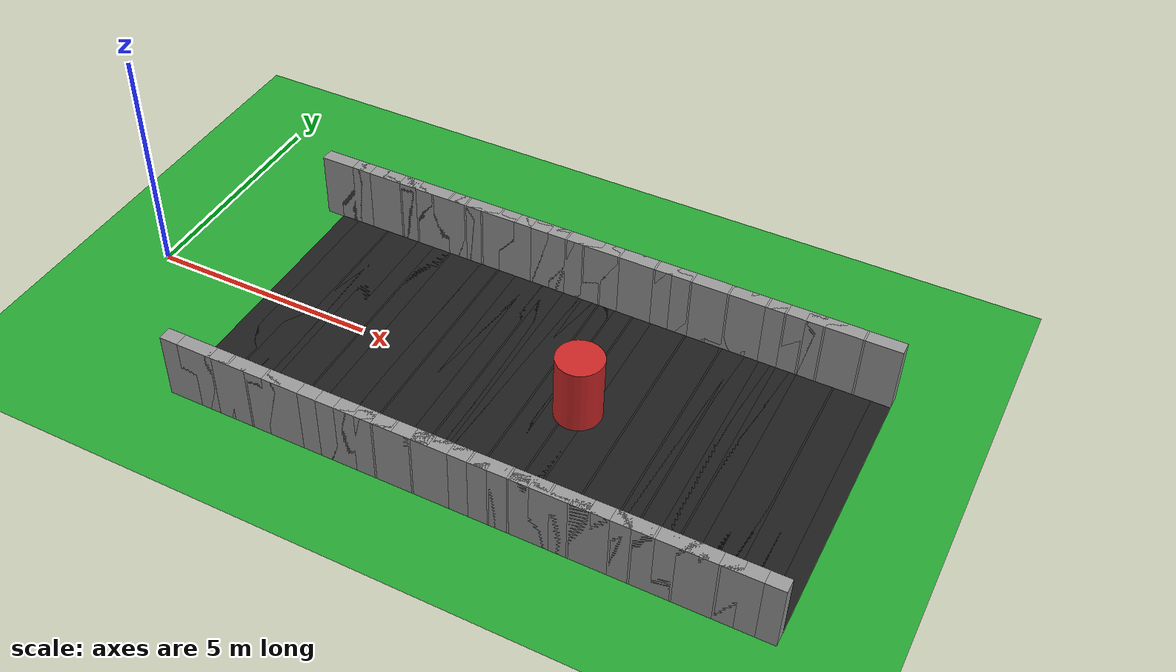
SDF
<sdf version="1.6">
 <world name="obstacle_mid">
  <include><uri>model://sun</uri></include>
  <model name="ground_plane">
   <static>true</static>
   <link name="link">
    <collision name="collision">
     <surface><friction><ode><mu>100</mu><mu2>50</mu2></ode></friction></surface>
     <geometry><plane><normal>0 0 1</normal><size>120 120</size></plane></geometry>
    </collision>
    <visual name="visual">
     <geometry><plane><normal>0 0 1</normal><size>120 120</size></plane></geometry>
     <material>
      <script><uri>file://media/materials/scripts/gazebo.material</uri><name>Gazebo/Green</name></script>
     </material>
    </visual>
   </link>
  </model>
  <model name="curbL_6">
   <static>true</static>
   <pose>2.600 3.150 0.750 0 0 0.00000</pose>
   <link name="link">
    <collision name="collision"><geometry><box><size>0.760 0.300 1.500</size></box></geometry></collision>
    <visual name="visual">
     <geometry><box><size>0.760 0.300 1.500</size></box></geometry>
     <material>
      <script><uri>file://media/materials/scripts/gazebo.material</uri><name>Gazebo/Grey</name></script>
     </material>
    </visual>
   </link>
  </model>
  <model name="asphalt_7">
   <static>true</static>
   <pose>3.000 0.000 0.005 0 0 0.00000</pose>
   <link name="link">
    <visual name="visual">
     <geometry><box><size>0.760 6.000 0.010</size></box></geometry>
     <material>
      <script><uri>file://media/materials/scripts/gazebo.material</uri><name>Gazebo/Black</name></script>
     </material>
    </visual>
   </link>
  </model>
  <model name="curbL_7">
   <static>true</static>
   <pose>3.000 3.150 0.750 0 0 0.00000</pose>
   <link name="link">
    <collision name="collision"><geometry><box><size>0.760 0.300 1.500</size></box></geometry></collision>
    <visual name="visual">
     <geometry><box><size>0.760 0.300 1.500</size></box></geometry>
     <material>
      <script><uri>file://media/materials/scripts/gazebo.material</uri><name>Gazebo/Grey</name></script>
     </material>
    </visual>
   </link>
  </model>
  <model name="curbR_7">
   <static>true</static>
   <pose>3.000 -3.150 0.750 0 0 0.00000</pose>
   <link name="link">
    <collision name="collision"><geometry><box><size>0.760 0.300 1.500</size></box></geometry></collision>
    <visual name="visual">
     <geometry><box><size>0.760 0.300 1.500</size></box></geometry>
     <material>
      <script><uri>file://media/materials/scripts/gazebo.material</uri><name>Gazebo/Grey</name></script>
     </material>
    </visual>
   </link>
  </model>
  <model name="asphalt_8">
   <static>true</static>
   <pose>3.400 0.000 0.005 0 0 0.00000</pose>
   <link name="link">
    <visual name="visual">
     <geometry><box><size>0.760 6.000 0.010</size></box></geometry>
     <material>
      <script><uri>file://media/materials/scripts/gazebo.material</uri><name>Gazebo/Black</name></script>
     </material>
    </visual>
   </link>
  </model>
  <model name="curbL_8">
   <static>true</static>
   <pose>3.400 3.150 0.750 0 0 0.00000</pose>
   <link name="link">
    <collision name="collision"><geometry><box><size>0.760 0.300 1.500</size></box></geometry></collision>
    <visual name="visual">
     <geometry><box><size>0.760 0.300 1.500</size></box></geometry>
     <material>
      <script><uri>file://media/materials/scripts/gazebo.material</uri><name>Gazebo/Grey</name></script>
     </material>
    </visual>
   </link>
  </model>
  <model name="curbR_8">
   <static>true</static>
   <pose>3.400 -3.150 0.750 0 0 0.00000</pose>
   <link name="link">
    <collision name="collision"><geometry><box><size>0.760 0.300 1.500</size></box></geometry></collision>
    <visual name="visual">
     <geometry><box><size>0.760 0.300 1.500</size></box></geometry>
     <material>
      <script><uri>file://media/materials/scripts/gazebo.material</uri><name>Gazebo/Grey</name></script>
     </material>
    </visual>
   </link>
  </model>
  <model name="asphalt_9">
   <static>true</static>
   <pose>3.800 0.000 0.005 0 0 0.00000</pose>
   <link name="link">
    <visual name="visual">
     <geometry><box><size>0.760 6.000 0.010</size></box></geometry>
     <material>
      <script><uri>file://media/materials/scripts/gazebo.material</uri><name>Gazebo/Black</name></script>
     </material>
    </visual>
   </link>
  </model>
  <model name="curbL_9">
   <static>true</static>
   <pose>3.800 3.150 0.750 0 0 0.00000</pose>
   <link name="link">
    <collision name="collision"><geometry><box><size>0.760 0.300 1.500</size></box></geometry></collision>
    <visual name="visual">
     <geometry><box><size>0.760 0.300 1.500</size></box></geometry>
     <material>
      <script><uri>file://media/materials/scripts/gazebo.material</uri><name>Gazebo/Grey</name></script>
     </material>
    </visual>
   </link>
  </model>
  <model name="curbR_9">
   <static>true</static>
   <pose>3.800 -3.150 0.750 0 0 0.00000</pose>
   <link name="link">
    <collision name="collision"><geometry><box><size>0.760 0.300 1.500</size></box></geometry></collision>
    <visual name="visual">
     <geometry><box><size>0.760 0.300 1.500</size></box></geometry>
     <material>
      <script><uri>file://media/materials/scripts/gazebo.material</uri><name>Gazebo/Grey</name></script>
     </material>
    </visual>
   </link>
  </model>
  <model name="asphalt_10">
   <static>true</static>
   <pose>4.200 0.000 0.005 0 0 0.00000</pose>
   <link name="link">
    <visual name="visual">
     <geometry><box><size>0.760 6.000 0.010</size></box></geometry>
     <material>
      <script><uri>file://media/materials/scripts/gazebo.material</uri><name>Gazebo/Black</name></script>
     </material>
    </visual>
   </link>
  </model>
  <model name="curbL_10">
   <static>true</static>
   <pose>4.200 3.150 0.750 0 0 0.00000</pose>
   <link name="link">
    <collision name="collision"><geometry><box><size>0.760 0.300 1.500</size></box></geometry></collision>
    <visual name="visual">
     <geometry><box><size>0.760 0.300 1.500</size></box></geometry>
     <material>
      <script><uri>file://media/materials/scripts/gazebo.material</uri><name>Gazebo/Grey</name></script>
     </material>
    </visual>
   </link>
  </model>
  <model name="curbR_10">
   <static>true</static>
   <pose>4.200 -3.150 0.750 0 0 0.00000</pose>
   <link name="link">
    <collision name="collision"><geometry><box><size>0.760 0.300 1.500</size></box></geometry></collision>
    <visual name="visual">
     <geometry><box><size>0.760 0.300 1.500</size></box></geometry>
     <material>
      <script><uri>file://media/materials/scripts/gazebo.material</uri><name>Gazebo/Grey</name></script>
     </material>
    </visual>
   </link>
  </model>
  <model name="asphalt_11">
   <static>true</static>
   <pose>4.600 0.000 0.005 0 0 0.00000</pose>
   <link name="link">
    <visual name="visual">
     <geometry><box><size>0.760 6.000 0.010</size></box></geometry>
     <material>
      <script><uri>file://media/materials/scripts/gazebo.material</uri><name>Gazebo/Black</name></script>
     </material>
    </visual>
   </link>
  </model>
  <model name="curbL_11">
   <static>true</static>
   <pose>4.600 3.150 0.750 0 0 0.00000</pose>
   <link name="link">
    <collision name="collision"><geometry><box><size>0.760 0.300 1.500</size></box></geometry></collision>
    <visual name="visual">
     <geometry><box><size>0.760 0.300 1.500</size></box></geometry>
     <material>
      <script><uri>file://media/materials/scripts/gazebo.material</uri><name>Gazebo/Grey</name></script>
     </material>
    </visual>
   </link>
  </model>
  <model name="curbR_11">
   <static>true</static>
   <pose>4.600 -3.150 0.750 0 0 0.00000</pose>
   <link name="link">
    <collision name="collision"><geometry><box><size>0.760 0.300 1.500</size></box></geometry></collision>
    <visual name="visual">
     <geometry><box><size>0.760 0.300 1.500</size></box></geometry>
     <material>
      <script><uri>file://media/materials/scripts/gazebo.material</uri><name>Gazebo/Grey</name></script>
     </material>
    </visual>
   </link>
  </model>
  <model name="asphalt_12">
   <static>true</static>
   <pose>5.000 0.000 0.005 0 0 0.00000</pose>
   <link name="link">
    <visual name="visual">
     <geometry><box><size>0.760 6.000 0.010</size></box></geometry>
     <material>
      <script><uri>file://media/materials/scripts/gazebo.material</uri><name>Gazebo/Black</name></script>
     </material>
    </visual>
   </link>
  </model>
  <model name="curbL_12">
   <static>true</static>
   <pose>5.000 3.150 0.750 0 0 0.00000</pose>
   <link name="link">
    <collision name="collision"><geometry><box><size>0.760 0.300 1.500</size></box></geometry></collision>
    <visual name="visual">
     <geometry><box><size>0.760 0.300 1.500</size></box></geometry>
     <material>
      <script><uri>file://media/materials/scripts/gazebo.material</uri><name>Gazebo/Grey</name></script>
     </material>
    </visual>
   </link>
  </model>
  <model name="curbR_12">
   <static>true</static>
   <pose>5.000 -3.150 0.750 0 0 0.00000</pose>
   <link name="link">
    <collision name="collision"><geometry><box><size>0.760 0.300 1.500</size></box></geometry></collision>
    <visual name="visual">
     <geometry><box><size>0.760 0.300 1.500</size></box></geometry>
     <material>
      <script><uri>file://media/materials/scripts/gazebo.material</uri><name>Gazebo/Grey</name></script>
     </material>
    </visual>
   </link>
  </model>
  <model name="asphalt_13">
   <static>true</static>
   <pose>5.400 0.000 0.005 0 0 0.00000</pose>
   <link name="link">
    <visual name="visual">
     <geometry><box><size>0.760 6.000 0.010</size></box></geometry>
     <material>
      <script><uri>file://media/materials/scripts/gazebo.material</uri><name>Gazebo/Black</name></script>
     </material>
    </visual>
   </link>
  </model>
  <model name="curbL_13">
   <static>true</static>
   <pose>5.400 3.150 0.750 0 0 0.00000</pose>
   <link name="link">
    <collision name="collision"><geometry><box><size>0.760 0.300 1.500</size></box></geometry></collision>
    <visual name="visual">
     <geometry><box><size>0.760 0.300 1.500</size></box></geometry>
     <material>
      <script><uri>file://media/materials/scripts/gazebo.material</uri><name>Gazebo/Grey</name></script>
     </material>
    </visual>
   </link>
  </model>
  <model name="curbR_13">
   <static>true</static>
   <pose>5.400 -3.150 0.750 0 0 0.00000</pose>
   <link name="link">
    <collision name="collision"><geometry><box><size>0.760 0.300 1.500</size></box></geometry></collision>
    <visual name="visual">
     <geometry><box><size>0.760 0.300 1.500</size></box></geometry>
     <material>
      <script><uri>file://media/materials/scripts/gazebo.material</uri><name>Gazebo/Grey</name></script>
     </material>
    </visual>
   </link>
  </model>
  <model name="asphalt_14">
   <static>true</static>
   <pose>5.800 0.000 0.005 0 0 0.00000</pose>
   <link name="link">
    <visual name="visual">
     <geometry><box><size>0.760 6.000 0.010</size></box></geometry>
     <material>
      <script><uri>file://media/materials/scripts/gazebo.material</uri><name>Gazebo/Black</name></script>
     </material>
    </visual>
   </link>
  </model>
  <model name="curbL_14">
   <static>true</static>
   <pose>5.800 3.150 0.750 0 0 0.00000</pose>
   <link name="link">
    <collision name="collision"><geometry><box><size>0.760 0.300 1.500</size></box></geometry></collision>
    <visual name="visual">
     <geometry><box><size>0.760 0.300 1.500</size></box></geometry>
     <material>
      <script><uri>file://media/materials/scripts/gazebo.material</uri><name>Gazebo/Grey</name></script>
     </material>
    </visual>
   </link>
  </model>
  <model name="curbR_14">
   <static>true</static>
   <pose>5.800 -3.150 0.750 0 0 0.00000</pose>
   <link name="link">
    <collision name="collision"><geometry><box><size>0.760 0.300 1.500</size></box></geometry></collision>
    <visual name="visual">
     <geometry><box><size>0.760 0.300 1.500</size></box></geometry>
     <material>
      <script><uri>file://media/materials/scripts/gazebo.material</uri><name>Gazebo/Grey</name></script>
     </material>
    </visual>
   </link>
  </model>
  <model name="asphalt_15">
   <static>true</static>
   <pose>6.200 0.000 0.005 0 0 0.00000</pose>
   <link name="link">
    <visual name="visual">
     <geometry><box><size>0.760 6.000 0.010</size></box></geometry>
     <material>
      <script><uri>file://media/materials/scripts/gazebo.material</uri><name>Gazebo/Black</name></script>
     </material>
    </visual>
   </link>
  </model>
  <model name="curbL_15">
   <static>true</static>
   <pose>6.200 3.150 0.750 0 0 0.00000</pose>
   <link name="link">
    <collision name="collision"><geometry><box><size>0.760 0.300 1.500</size></box></geometry></collision>
    <visual name="visual">
     <geometry><box><size>0.760 0.300 1.500</size></box></geometry>
     <material>
      <script><uri>file://media/materials/scripts/gazebo.material</uri><name>Gazebo/Grey</name></script>
     </material>
    </visual>
   </link>
  </model>
  <model name="curbR_15">
   <static>true</static>
   <pose>6.200 -3.150 0.750 0 0 0.00000</pose>
   <link name="link">
    <collision name="collision"><geometry><box><size>0.760 0.300 1.500</size></box></geometry></collision>
    <visual name="visual">
     <geometry><box><size>0.760 0.300 1.500</size></box></geometry>
     <material>
      <script><uri>file://media/materials/scripts/gazebo.material</uri><name>Gazebo/Grey</name></script>
     </material>
    </visual>
   </link>
  </model>
  <model name="asphalt_16">
   <static>true</static>
   <pose>6.600 0.000 0.005 0 0 0.00000</pose>
   <link name="link">
    <visual name="visual">
     <geometry><box><size>0.760 6.000 0.010</size></box></geometry>
     <material>
      <script><uri>file://media/materials/scripts/gazebo.material</uri><name>Gazebo/Black</name></script>
     </material>
    </visual>
   </link>
  </model>
  <model name="curbL_16">
   <static>true</static>
   <pose>6.600 3.150 0.750 0 0 0.00000</pose>
   <link name="link">
    <collision name="collision"><geometry><box><size>0.760 0.300 1.500</size></box></geometry></collision>
    <visual name="visual">
     <geometry><box><size>0.760 0.300 1.500</size></box></geometry>
     <material>
      <script><uri>file://media/materials/scripts/gazebo.material</uri><name>Gazebo/Grey</name></script>
     </material>
    </visual>
   </link>
  </model>
  <model name="curbR_16">
   <static>true</static>
   <pose>6.600 -3.150 0.750 0 0 0.00000</pose>
   <link name="link">
    <collision name="collision"><geometry><box><size>0.760 0.300 1.500</size></box></geometry></collision>
    <visual name="visual">
     <geometry><box><size>0.760 0.300 1.500</size></box></geometry>
     <material>
      <script><uri>file://media/materials/scripts/gazebo.material</uri><name>Gazebo/Grey</name></script>
     </material>
    </visual>
   </link>
  </model>
  <model name="asphalt_17">
   <static>true</static>
   <pose>7.000 0.000 0.005 0 0 0.00000</pose>
   <link name="link">
    <visual name="visual">
     <geometry><box><size>0.760 6.000 0.010</size></box></geometry>
     <material>
      <script><uri>file://media/materials/scripts/gazebo.material</uri><name>Gazebo/Black</name></script>
     </material>
    </visual>
   </link>
  </model>
  <model name="curbL_17">
   <static>true</static>
   <pose>7.000 3.150 0.750 0 0 0.00000</pose>
   <link name="link">
    <collision name="collision"><geometry><box><size>0.760 0.300 1.500</size></box></geometry></collision>
    <visual name="visual">
     <geometry><box><size>0.760 0.300 1.500</size></box></geometry>
     <material>
      <script><uri>file://media/materials/scripts/gazebo.material</uri><name>Gazebo/Grey</name></script>
     </material>
    </visual>
   </link>
  </model>
  <model name="curbR_17">
   <static>true</static>
   <pose>7.000 -3.150 0.750 0 0 0.00000</pose>
   <link name="link">
    <collision name="collision"><geometry><box><size>0.760 0.300 1.500</size></box></geometry></collision>
    <visual name="visual">
     <geometry><box><size>0.760 0.300 1.500</size></box></geometry>
     <material>
      <script><uri>file://media/materials/scripts/gazebo.material</uri><name>Gazebo/Grey</name></script>
     </material>
    </visual>
   </link>
  </model>
  <model name="asphalt_18">
   <static>true</static>
   <pose>7.400 0.000 0.005 0 0 0.00000</pose>
   <link name="link">
    <visual name="visual">
     <geometry><box><size>0.760 6.000 0.010</size></box></geometry>
     <material>
      <script><uri>file://media/materials/scripts/gazebo.material</uri><name>Gazebo/Black</name></script>
     </material>
    </visual>
   </link>
  </model>
  <model name="curbL_18">
   <static>true</static>
   <pose>7.400 3.150 0.750 0 0 0.00000</pose>
   <link name="link">
    <collision name="collision"><geometry><box><size>0.760 0.300 1.500</size></box></geometry></collision>
    <visual name="visual">
     <geometry><box><size>0.760 0.300 1.500</size></box></geometry>
     <material>
      <script><uri>file://media/materials/scripts/gazebo.material</uri><name>Gazebo/Grey</name></script>
     </material>
    </visual>
   </link>
  </model>
  <model name="curbR_18">
   <static>true</static>
   <pose>7.400 -3.150 0.750 0 0 0.00000</pose>
   <link name="link">
    <collision name="collision"><geometry><box><size>0.760 0.300 1.500</size></box></geometry></collision>
    <visual name="visual">
     <geometry><box><size>0.760 0.300 1.500</size></box></geometry>
     <material>
      <script><uri>file://media/materials/scripts/gazebo.material</uri><name>Gazebo/Grey</name></script>
     </material>
    </visual>
   </link>
  </model>
  <model name="asphalt_19">
   <static>true</static>
   <pose>7.800 0.000 0.005 0 0 0.00000</pose>
   <link name="link">
    <visual name="visual">
     <geometry><box><size>0.760 6.000 0.010</size></box></geometry>
     <material>
      <script><uri>file://media/materials/scripts/gazebo.material</uri><name>Gazebo/Black</name></script>
     </material>
    </visual>
   </link>
  </model>
  <model name="curbL_19">
   <static>true</static>
   <pose>7.800 3.150 0.750 0 0 0.00000</pose>
   <link name="link">
    <collision name="collision"><geometry><box><size>0.760 0.300 1.500</size></box></geometry></collision>
    <visual name="visual">
     <geometry><box><size>0.760 0.300 1.500</size></box></geometry>
     <material>
      <script><uri>file://media/materials/scripts/gazebo.material</uri><name>Gazebo/Grey</name></script>
     </material>
    </visual>
   </link>
  </model>
  <model name="curbR_19">
   <static>true</static>
   <pose>7.800 -3.150 0.750 0 0 0.00000</pose>
   <link name="link">
    <collision name="collision"><geometry><box><size>0.760 0.300 1.500</size></box></geometry></collision>
    <visual name="visual">
     <geometry><box><size>0.760 0.300 1.500</size></box></geometry>
     <material>
      <script><uri>file://media/materials/scripts/gazebo.material</uri><name>Gazebo/Grey</name></script>
     </material>
    </visual>
   </link>
  </model>
  <model name="asphalt_20">
   <static>true</static>
   <pose>8.200 0.000 0.005 0 0 0.00000</pose>
   <link name="link">
    <visual name="visual">
     <geometry><box><size>0.760 6.000 0.010</size></box></geometry>
     <material>
      <script><uri>file://media/materials/scripts/gazebo.material</uri><name>Gazebo/Black</name></script>
     </material>
    </visual>
   </link>
  </model>
  <model name="curbL_20">
   <static>true</static>
   <pose>8.200 3.150 0.750 0 0 0.00000</pose>
   <link name="link">
    <collision name="collision"><geometry><box><size>0.760 0.300 1.500</size></box></geometry></collision>
    <visual name="visual">
     <geometry><box><size>0.760 0.300 1.500</size></box></geometry>
     <material>
      <script><uri>file://media/materials/scripts/gazebo.material</uri><name>Gazebo/Grey</name></script>
     </material>
    </visual>
   </link>
  </model>
  <model name="curbR_20">
   <static>true</static>
   <pose>8.200 -3.150 0.750 0 0 0.00000</pose>
   <link name="link">
    <collision name="collision"><geometry><box><size>0.760 0.300 1.500</size></box></geometry></collision>
    <visual name="visual">
     <geometry><box><size>0.760 0.300 1.500</size></box></geometry>
     <material>
      <script><uri>file://media/materials/scripts/gazebo.material</uri><name>Gazebo/Grey</name></script>
     </material>
    </visual>
   </link>
  </model>
  <model name="asphalt_21">
   <static>true</static>
   <pose>8.600 0.000 0.005 0 0 0.00000</pose>
   <link name="link">
    <visual name="visual">
     <geometry><box><size>0.760 6.000 0.010</size></box></geometry>
     <material>
      <script><uri>file://media/materials/scripts/gazebo.material</uri><name>Gazebo/Black</name></script>
     </material>
    </visual>
   </link>
  </model>
  <model name="curbL_21">
   <static>true</static>
   <pose>8.600 3.150 0.750 0 0 0.00000</pose>
   <link name="link">
    <collision name="collision"><geometry><box><size>0.760 0.300 1.500</size></box></geometry></collision>
    <visual name="visual">
     <geometry><box><size>0.760 0.300 1.500</size></box></geometry>
     <material>
      <script><uri>file://media/materials/scripts/gazebo.material</uri><name>Gazebo/Grey</name></script>
     </material>
    </visual>
   </link>
  </model>
  <model name="curbR_21">
   <static>true</static>
   <pose>8.600 -3.150 0.750 0 0 0.00000</pose>
   <link name="link">
    <collision name="collision"><geometry><box><size>0.760 0.300 1.500</size></box></geometry></collision>
    <visual name="visual">
     <geometry><box><size>0.760 0.300 1.500</size></box></geometry>
     <material>
      <script><uri>file://media/materials/scripts/gazebo.material</uri><name>Gazebo/Grey</name></script>
     </material>
    </visual>
   </link>
  </model>
  <model name="asphalt_22">
   <static>true</static>
   <pose>9.000 0.000 0.005 0 0 0.00000</pose>
   <link name="link">
    <visual name="visual">
     <geometry><box><size>0.760 6.000 0.010</size></box></geometry>
     <material>
      <script><uri>file://media/materials/scripts/gazebo.material</uri><name>Gazebo/Black</name></script>
     </material>
    </visual>
   </link>
  </model>
  <model name="curbL_22">
   <static>true</static>
   <pose>9.000 3.150 0.750 0 0 0.00000</pose>
   <link name="link">
    <collision name="collision"><geometry><box><size>0.760 0.300 1.500</size></box></geometry></collision>
    <visual name="visual">
     <geometry><box><size>0.760 0.300 1.500</size></box></geometry>
     <material>
      <script><uri>file://media/materials/scripts/gazebo.material</uri><name>Gazebo/Grey</name></script>
     </material>
    </visual>
   </link>
  </model>
  <model name="curbR_22">
   <static>true</static>
   <pose>9.000 -3.150 0.750 0 0 0.00000</pose>
   <link name="link">
    <collision name="collision"><geometry><box><size>0.760 0.300 1.500</size></box></geometry></collision>
    <visual name="visual">
     <geometry><box><size>0.760 0.300 1.500</size></box></geometry>
     <material>
      <script><uri>file://media/materials/scripts/gazebo.material</uri><name>Gazebo/Grey</name></script>
     </material>
    </visual>
   </link>
  </model>
  <model name="asphalt_23">
   <static>true</static>
   <pose>9.400 0.000 0.005 0 0 0.00000</pose>
   <link name="link">
    <visual name="visual">
     <geometry><box><size>0.760 6.000 0.010</size></box></geometry>
     <material>
      <script><uri>file://media/materials/scripts/gazebo.material</uri><name>Gazebo/Black</name></script>
     </material>
    </visual>
   </link>
  </model>
  <model name="curbL_23">
   <static>true</static>
   <pose>9.400 3.150 0.750 0 0 0.00000</pose>
   <link name="link">
    <collision name="collision"><geometry><box><size>0.760 0.300 1.500</size></box></geometry></collision>
    <visual name="visual">
     <geometry><box><size>0.760 0.300 1.500</size></box></geometry>
     <material>
      <script><uri>file://media/materials/scripts/gazebo.material</uri><name>Gazebo/Grey</name></script>
     </material>
    </visual>
   </link>
  </model>
  <model name="curbR_23">
   <static>true</static>
   <pose>9.400 -3.150 0.750 0 0 0.00000</pose>
   <link name="link">
    <collision name="collision"><geometry><box><size>0.760 0.300 1.500</size></box></geometry></collision>
    <visual name="visual">
     <geometry><box><size>0.760 0.300 1.500</size></box></geometry>
     <material>
      <script><uri>file://media/materials/scripts/gazebo.material</uri><name>Gazebo/Grey</name></script>
     </material>
    </visual>
   </link>
  </model>
  <model name="asphalt_24">
   <static>true</static>
   <pose>9.800 0.000 0.005 0 0 0.00000</pose>
   <link name="link">
    <visual name="visual">
     <geometry><box><size>0.760 6.000 0.010</size></box></geometry>
     <material>
      <script><uri>file://media/materials/scripts/gazebo.material</uri><name>Gazebo/Black</name></script>
     </material>
    </visual>
   </link>
  </model>
  <model name="curbL_24">
   <static>true</static>
   <pose>9.800 3.150 0.750 0 0 0.00000</pose>
   <link name="link">
    <collision name="collision"><geometry><box><size>0.760 0.300 1.500</size></box></geometry></collision>
    <visual name="visual">
     <geometry><box><size>0.760 0.300 1.500</size></box></geometry>
     <material>
      <script><uri>file://media/materials/scripts/gazebo.material</uri><name>Gazebo/Grey</name></script>
     </material>
    </visual>
   </link>
  </model>
  <model name="curbR_24">
   <static>true</static>
   <pose>9.800 -3.150 0.750 0 0 0.00000</pose>
   <link name="link">
    <collision name="collision"><geometry><box><size>0.760 0.300 1.500</size></box></geometry></collision>
    <visual name="visual">
     <geometry><box><size>0.760 0.300 1.500</size></box></geometry>
     <material>
      <script><uri>file://media/materials/scripts/gazebo.material</uri><name>Gazebo/Grey</name></script>
     </material>
    </visual>
   </link>
  </model>
  <model name="asphalt_25">
   <static>true</static>
   <pose>10.200 0.000 0.005 0 0 0.00000</pose>
   <link name="link">
    <visual name="visual">
     <geometry><box><size>0.760 6.000 0.010</size></box></geometry>
     <material>
      <script><uri>file://media/materials/scripts/gazebo.material</uri><name>Gazebo/Black</name></script>
     </material>
    </visual>
   </link>
  </model>
  <model name="curbL_25">
   <static>true</static>
   <pose>10.200 3.150 0.750 0 0 0.00000</pose>
   <link name="link">
    <collision name="collision"><geometry><box><size>0.760 0.300 1.500</size></box></geometry></collision>
    <visual name="visual">
     <geometry><box><size>0.760 0.300 1.500</size></box></geometry>
     <material>
      <script><uri>file://media/materials/scripts/gazebo.material</uri><name>Gazebo/Grey</name></script>
     </material>
    </visual>
   </link>
  </model>
  <model name="curbR_25">
   <static>true</static>
   <pose>10.200 -3.150 0.750 0 0 0.00000</pose>
   <link name="link">
    <collision name="collision"><geometry><box><size>0.760 0.300 1.500</size></box></geometry></collision>
    <visual name="visual">
     <geometry><box><size>0.760 0.300 1.500</size></box></geometry>
     <material>
      <script><uri>file://media/materials/scripts/gazebo.material</uri><name>Gazebo/Grey</name></script>
     </material>
    </visual>
   </link>
  </model>
  <model name="asphalt_26">
   <static>true</static>
   <pose>10.600 0.000 0.005 0 0 0.00000</pose>
   <link name="link">
    <visual name="visual">
     <geometry><box><size>0.760 6.000 0.010</size></box></geometry>
     <material>
      <script><uri>file://media/materials/scripts/gazebo.material</uri><name>Gazebo/Black</name></script>
     </material>
    </visual>
   </link>
  </model>
  <model name="curbL_26">
   <static>true</static>
   <pose>10.600 3.150 0.750 0 0 0.00000</pose>
   <link name="link">
    <collision name="collision"><geometry><box><size>0.760 0.300 1.500</size></box></geometry></collision>
    <visual name="visual">
     <geometry><box><size>0.760 0.300 1.500</size></box></geometry>
     <material>
      <script><uri>file://media/materials/scripts/gazebo.material</uri><name>Gazebo/Grey</name></script>
     </material>
    </visual>
   </link>
  </model>
  <model name="curbR_26">
   <static>true</static>
   <pose>10.600 -3.150 0.750 0 0 0.00000</pose>
   <link name="link">
    <collision name="collision"><geometry><box><size>0.760 0.300 1.500</size></box></geometry></collision>
    <visual name="visual">
     <geometry><box><size>0.760 0.300 1.500</size></box></geometry>
     <material>
      <script><uri>file://media/materials/scripts/gazebo.material</uri><name>Gazebo/Grey</name></script>
     </material>
    </visual>
   </link>
  </model>
  <model name="asphalt_27">
   <static>true</static>
   <pose>11.000 0.000 0.005 0 0 0.00000</pose>
   <link name="link">
    <visual name="visual">
     <geometry><box><size>0.760 6.000 0.010</size></box></geometry>
     <material>
      <script><uri>file://media/materials/scripts/gazebo.material</uri><name>Gazebo/Black</name></script>
     </material>
    </visual>
   </link>
  </model>
  <model name="curbL_27">
   <static>true</static>
   <pose>11.000 3.150 0.750 0 0 0.00000</pose>
   <link name="link">
    <collision name="collision"><geometry><box><size>0.760 0.300 1.500</size></box></geometry></collision>
    <visual name="visual">
     <geometry><box><size>0.760 0.300 1.500</size></box></geometry>
     <material>
      <script><uri>file://media/materials/scripts/gazebo.material</uri><name>Gazebo/Grey</name></script>
     </material>
    </visual>
   </link>
  </model>
  <model name="curbR_27">
   <static>true</static>
   <pose>11.000 -3.150 0.750 0 0 0.00000</pose>
   <link name="link">
    <collision name="collision"><geometry><box><size>0.760 0.300 1.500</size></box></geometry></collision>
    <visual name="visual">
     <geometry><box><size>0.760 0.300 1.500</size></box></geometry>
     <material>
      <script><uri>file://media/materials/scripts/gazebo.material</uri><name>Gazebo/Grey</name></script>
     </material>
    </visual>
   </link>
  </model>
  <model name="asphalt_28">
   <static>true</static>
   <pose>11.400 0.000 0.005 0 0 0.00000</pose>
   <link name="link">
    <visual name="visual">
     <geometry><box><size>0.760 6.000 0.010</size></box></geometry>
     <material>
      <script><uri>file://media/materials/scripts/gazebo.material</uri><name>Gazebo/Black</name></script>
     </material>
    </visual>
   </link>
  </model>
  <model name="curbL_28">
   <static>true</static>
   <pose>11.400 3.150 0.750 0 0 0.00000</pose>
   <link name="link">
    <collision name="collision"><geometry><box><size>0.760 0.300 1.500</size></box></geometry></collision>
    <visual name="visual">
     <geometry><box><size>0.760 0.300 1.500</size></box></geometry>
     <material>
      <script><uri>file://media/materials/scripts/gazebo.material</uri><name>Gazebo/Grey</name></script>
     </material>
    </visual>
   </link>
  </model>
  <model name="curbR_28">
   <static>true</static>
   <pose>11.400 -3.150 0.750 0 0 0.00000</pose>
   <link name="link">
    <collision name="collision"><geometry><box><size>0.760 0.300 1.500</size></box></geometry></collision>
    <visual name="visual">
     <geometry><box><size>0.760 0.300 1.500</size></box></geometry>
     <material>
      <script><uri>file://media/materials/scripts/gazebo.material</uri><name>Gazebo/Grey</name></script>
     </material>
    </visual>
   </link>
  </model>
  <model name="asphalt_29">
   <static>true</static>
   <pose>11.800 0.000 0.005 0 0 0.00000</pose>
   <link name="link">
    <visual name="visual">
     <geometry><box><size>0.760 6.000 0.010</size></box></geometry>
     <material>
      <script><uri>file://media/materials/scripts/gazebo.material</uri><name>Gazebo/Black</name></script>
     </material>
    </visual>
   </link>
  </model>
  <model name="curbL_29">
   <static>true</static>
   <pose>11.800 3.150 0.750 0 0 0.00000</pose>
   <link name="link">
    <collision name="collision"><geometry><box><size>0.760 0.300 1.500</size></box></geometry></collision>
    <visual name="visual">
     <geometry><box><size>0.760 0.300 1.500</size></box></geometry>
     <material>
      <script><uri>file://media/materials/scripts/gazebo.material</uri><name>Gazebo/Grey</name></script>
     </material>
    </visual>
   </link>
  </model>
  <model name="curbR_29">
   <static>true</static>
   <pose>11.800 -3.150 0.750 0 0 0.00000</pose>
   <link name="link">
    <collision name="collision"><geometry><box><size>0.760 0.300 1.500</size></box></geometry></collision>
    <visual name="visual">
     <geometry><box><size>0.760 0.300 1.500</size></box></geometry>
     <material>
      <script><uri>file://media/materials/scripts/gazebo.material</uri><name>Gazebo/Grey</name></script>
     </material>
    </visual>
   </link>
  </model>
  <model name="asphalt_30">
   <static>true</static>
   <pose>12.200 0.000 0.005 0 0 0.00000</pose>
   <link name="link">
    <visual name="visual">
     <geometry><box><size>0.760 6.000 0.010</size></box></geometry>
     <material>
      <script><uri>file://media/materials/scripts/gazebo.material</uri><name>Gazebo/Black</name></script>
     </material>
    </visual>
   </link>
  </model>
  <model name="curbL_30">
   <static>true</static>
   <pose>12.200 3.150 0.750 0 0 0.00000</pose>
   <link name="link">
    <collision name="collision"><geometry><box><size>0.760 0.300 1.500</size></box></geometry></collision>
    <visual name="visual">
     <geometry><box><size>0.760 0.300 1.500</size></box></geometry>
     <material>
      <script><uri>file://media/materials/scripts/gazebo.material</uri><name>Gazebo/Grey</name></script>
     </material>
    </visual>
   </link>
  </model>
  <model name="curbR_30">
   <static>true</static>
   <pose>12.200 -3.150 0.750 0 0 0.00000</pose>
   <link name="link">
    <collision name="collision"><geometry><box><size>0.760 0.300 1.500</size></box></geometry></collision>
    <visual name="visual">
     <geometry><box><size>0.760 0.300 1.500</size></box></geometry>
     <material>
      <script><uri>file://media/materials/scripts/gazebo.material</uri><name>Gazebo/Grey</name></script>
     </material>
    </visual>
   </link>
  </model>
  <model name="asphalt_31">
   <static>true</static>
   <pose>12.600 0.000 0.005 0 0 0.00000</pose>
   <link name="link">
    <visual name="visual">
     <geometry><box><size>0.760 6.000 0.010</size></box></geometry>
     <material>
      <script><uri>file://media/materials/scripts/gazebo.material</uri><name>Gazebo/Black</name></script>
     </material>
    </visual>
   </link>
  </model>
  <model name="curbL_31">
   <static>true</static>
   <pose>12.600 3.150 0.750 0 0 0.00000</pose>
   <link name="link">
    <collision name="collision"><geometry><box><size>0.760 0.300 1.500</size></box></geometry></collision>
    <visual name="visual">
     <geometry><box><size>0.760 0.300 1.500</size></box></geometry>
     <material>
      <script><uri>file://media/materials/scripts/gazebo.material</uri><name>Gazebo/Grey</name></script>
     </material>
    </visual>
   </link>
  </model>
  <model name="curbR_31">
   <static>true</static>
   <pose>12.600 -3.150 0.750 0 0 0.00000</pose>
   <link name="link">
    <collision name="collision"><geometry><box><size>0.760 0.300 1.500</size></box></geometry></collision>
    <visual name="visual">
     <geometry><box><size>0.760 0.300 1.500</size></box></geometry>
     <material>
      <script><uri>file://media/materials/scripts/gazebo.material</uri><name>Gazebo/Grey</name></script>
     </material>
    </visual>
   </link>
  </model>
  <model name="asphalt_32">
   <static>true</static>
   <pose>13.000 0.000 0.005 0 0 0.00000</pose>
   <link name="link">
    <visual name="visual">
     <geometry><box><size>0.760 6.000 0.010</size></box></geometry>
     <material>
      <script><uri>file://media/materials/scripts/gazebo.material</uri><name>Gazebo/Black</name></script>
     </material>
    </visual>
   </link>
  </model>
  <model name="curbL_32">
   <static>true</static>
   <pose>13.000 3.150 0.750 0 0 0.00000</pose>
   <link name="link">
    <collision name="collision"><geometry><box><size>0.760 0.300 1.500</size></box></geometry></collision>
    <visual name="visual">
     <geometry><box><size>0.760 0.300 1.500</size></box></geometry>
     <material>
      <script><uri>file://media/materials/scripts/gazebo.material</uri><name>Gazebo/Grey</name></script>
     </material>
    </visual>
   </link>
  </model>
  <model name="curbR_32">
   <static>true</static>
   <pose>13.000 -3.150 0.750 0 0 0.00000</pose>
   <link name="link">
    <collision name="collision"><geometry><box><size>0.760 0.300 1.500</size></box></geometry></collision>
    <visual name="visual">
     <geometry><box><size>0.760 0.300 1.500</size></box></geometry>
     <material>
      <script><uri>file://media/materials/scripts/gazebo.material</uri><name>Gazebo/Grey</name></script>
     </material>
    </visual>
   </link>
  </model>
  <model name="asphalt_33">
   <static>true</static>
   <pose>13.400 0.000 0.005 0 0 0.00000</pose>
   <link name="link">
    <visual name="visual">
     <geometry><box><size>0.760 6.000 0.010</size></box></geometry>
     <material>
      <script><uri>file://media/materials/scripts/gazebo.material</uri><name>Gazebo/Black</name></script>
     </material>
    </visual>
   </link>
  </model>
  <model name="curbL_33">
   <static>true</static>
   <pose>13.400 3.150 0.750 0 0 0.00000</pose>
   <link name="link">
    <collision name="collision"><geometry><box><size>0.760 0.300 1.500</size></box></geometry></collision>
    <visual name="visual">
     <geometry><box><size>0.760 0.300 1.500</size></box></geometry>
     <material>
      <script><uri>file://media/materials/scripts/gazebo.material</uri><name>Gazebo/Grey</name></script>
     </material>
    </visual>
   </link>
  </model>
  <model name="curbR_33">
   <static>true</static>
   <pose>13.400 -3.150 0.750 0 0 0.00000</pose>
   <link name="link">
    <collision name="collision"><geometry><box><size>0.760 0.300 1.500</size></box></geometry></collision>
    <visual name="visual">
     <geometry><box><size>0.760 0.300 1.500</size></box></geometry>
     <material>
      <script><uri>file://media/materials/scripts/gazebo.material</uri><name>Gazebo/Grey</name></script>
     </material>
    </visual>
   </link>
  </model>
  <model name="asphalt_34">
   <static>true</static>
   <pose>13.800 0.000 0.005 0 0 0.00000</pose>
   <link name="link">
    <visual name="visual">
     <geometry><box><size>0.760 6.000 0.010</size></box></geometry>
     <material>
      <script><uri>file://media/materials/scripts/gazebo.material</uri><name>Gazebo/Black</name></script>
     </material>
    </visual>
   </link>
  </model>
  <model name="curbL_34">
   <static>true</static>
   <pose>13.800 3.150 0.750 0 0 0.00000</pose>
   <link name="link">
    <collision name="collision"><geometry><box><size>0.760 0.300 1.500</size></box></geometry></collision>
    <visual name="visual">
     <geometry><box><size>0.760 0.300 1.500</size></box></geometry>
     <material>
      <script><uri>file://media/materials/scripts/gazebo.material</uri><name>Gazebo/Grey</name></script>
     </material>
    </visual>
   </link>
  </model>
  <model name="curbR_34">
   <static>true</static>
   <pose>13.800 -3.150 0.750 0 0 0.00000</pose>
   <link name="link">
    <collision name="collision"><geometry><box><size>0.760 0.300 1.500</size></box></geometry></collision>
    <visual name="visual">
     <geometry><box><size>0.760 0.300 1.500</size></box></geometry>
     <material>
      <script><uri>file://media/materials/scripts/gazebo.material</uri><name>Gazebo/Grey</name></script>
     </material>
    </visual>
   </link>
  </model>
  <model name="asphalt_35">
   <static>true</static>
   <pose>14.200 0.000 0.005 0 0 0.00000</pose>
   <link name="link">
    <visual name="visual">
     <geometry><box><size>0.760 6.000 0.010</size></box></geometry>
     <material>
      <script><uri>file://media/materials/scripts/gazebo.material</uri><name>Gazebo/Black</name></script>
     </material>
    </visual>
   </link>
  </model>
  <model name="curbL_35">
   <static>true</static>
   <pose>14.200 3.150 0.750 0 0 0.00000</pose>
   <link name="link">
    <collision name="collision"><geometry><box><size>0.760 0.300 1.500</size></box></geometry></collision>
    <visual name="visual">
     <geometry><box><size>0.760 0.300 1.500</size></box></geometry>
     <material>
      <script><uri>file://media/materials/scripts/gazebo.material</uri><name>Gazebo/Grey</name></script>
     </material>
    </visual>
   </link>
  </model>
  <model name="curbR_35">
   <static>true</static>
   <pose>14.200 -3.150 0.750 0 0 0.00000</pose>
   <link name="link">
    <collision name="collision"><geometry><box><size>0.760 0.300 1.500</size></box></geometry></collision>
    <visual name="visual">
     <geometry><box><size>0.760 0.300 1.500</size></box></geometry>
     <material>
      <script><uri>file://media/materials/scripts/gazebo.material</uri><name>Gazebo/Grey</name></script>
     </material>
    </visual>
   </link>
  </model>
  <model name="asphalt_36">
   <static>true</static>
   <pose>14.600 0.000 0.005 0 0 0.00000</pose>
   <link name="link">
    <visual name="visual">
     <geometry><box><size>0.760 6.000 0.010</size></box></geometry>
     <material>
      <script><uri>file://media/materials/scripts/gazebo.material</uri><name>Gazebo/Black</name></script>
     </material>
    </visual>
   </link>
  </model>
  <model name="curbL_36">
   <static>true</static>
   <pose>14.600 3.150 0.750 0 0 0.00000</pose>
   <link name="link">
    <collision name="collision"><geometry><box><size>0.760 0.300 1.500</size></box></geometry></collision>
    <visual name="visual">
     <geometry><box><size>0.760 0.300 1.500</size></box></geometry>
     <material>
      <script><uri>file://media/materials/scripts/gazebo.material</uri><name>Gazebo/Grey</name></script>
     </material>
    </visual>
   </link>
  </model>
  <model name="curbR_36">
   <static>true</static>
   <pose>14.600 -3.150 0.750 0 0 0.00000</pose>
   <link name="link">
    <collision name="collision"><geometry><box><size>0.760 0.300 1.500</size></box></geometry></collision>
    <visual name="visual">
     <geometry><box><size>0.760 0.300 1.500</size></box></geometry>
     <material>
      <script><uri>file://media/materials/scripts/gazebo.material</uri><name>Gazebo/Grey</name></script>
     </material>
    </visual>
   </link>
  </model>
  <model name="asphalt_37">
   <static>true</static>
   <pose>15.000 0.000 0.005 0 0 0.00000</pose>
   <link name="link">
    <visual name="visual">
     <geometry><box><size>0.760 6.000 0.010</size></box></geometry>
     <material>
      <script><uri>file://media/materials/scripts/gazebo.material</uri><name>Gazebo/Black</name></script>
     </material>
    </visual>
   </link>
  </model>
  <model name="curbL_37">
   <static>true</static>
   <pose>15.000 3.150 0.750 0 0 0.00000</pose>
   <link name="link">
    <collision name="collision"><geometry><box><size>0.760 0.300 1.500</size></box></geometry></collision>
    <visual name="visual">
     <geometry><box><size>0.760 0.300 1.500</size></box></geometry>
     <material>
      <script><uri>file://media/materials/scripts/gazebo.material</uri><name>Gazebo/Grey</name></script>
     </material>
    </visual>
   </link>
  </model>
  <model name="curbR_37">
   <static>true</static>
   <pose>15.000 -3.150 0.750 0 0 0.00000</pose>
   <link name="link">
    <collision name="collision"><geometry><box><size>0.760 0.300 1.500</size></box></geometry></collision>
    <visual name="visual">
     <geometry><box><size>0.760 0.300 1.500</size></box></geometry>
     <material>
      <script><uri>file://media/materials/scripts/gazebo.material</uri><name>Gazebo/Grey</name></script>
     </material>
    </visual>
   </link>
  </model>
  <model name="obs_0">
   <static>true</static>
   <pose>10.000 0.000 0.750 0 0 0</pose>
   <link name="link">
    <collision name="collision">
     <geometry><cylinder><radius>0.500</radius><length>1.500</length></cylinder></geometry>
    </collision>
    <visual name="visual">
     <geometry><cylinder><radius>0.500</radius><length>1.500</length></cylinder></geometry>
     <material>
      <script><uri>file://media/materials/scripts/gazebo.material</uri><name>Gazebo/Red</name></script>
     </material>
    </visual>
   </link>
  </model>
 </world>
</sdf>
